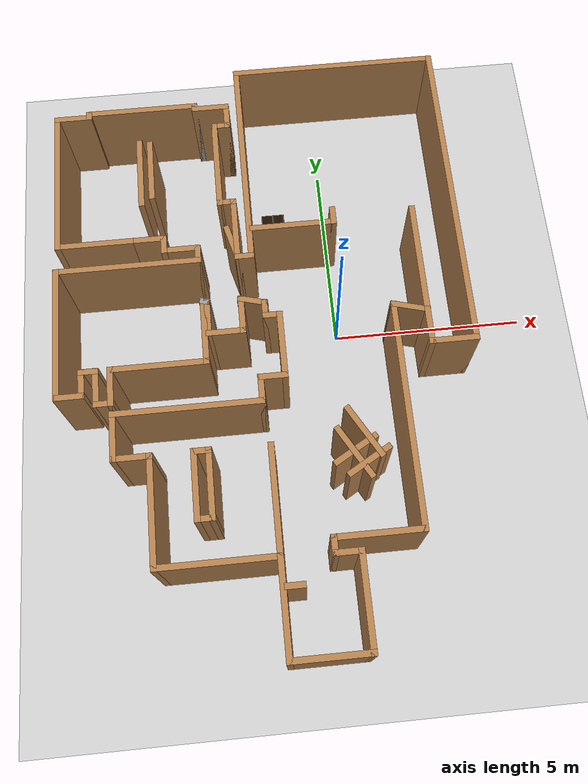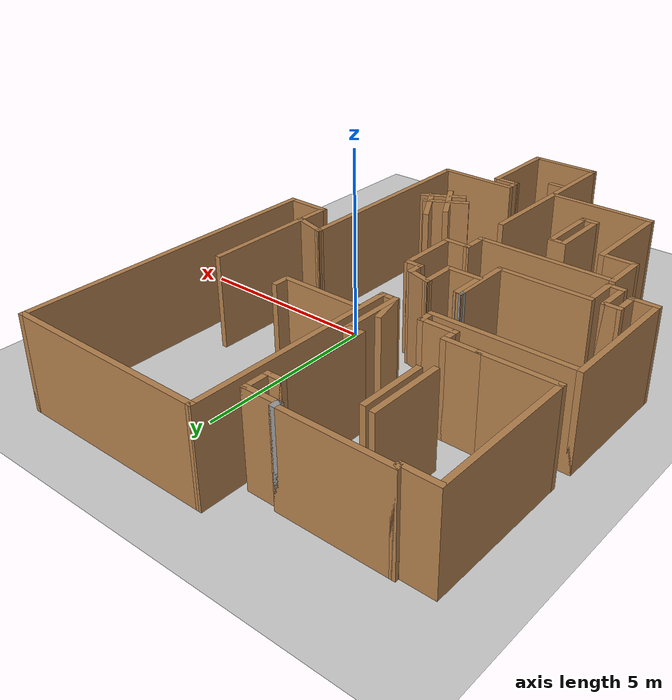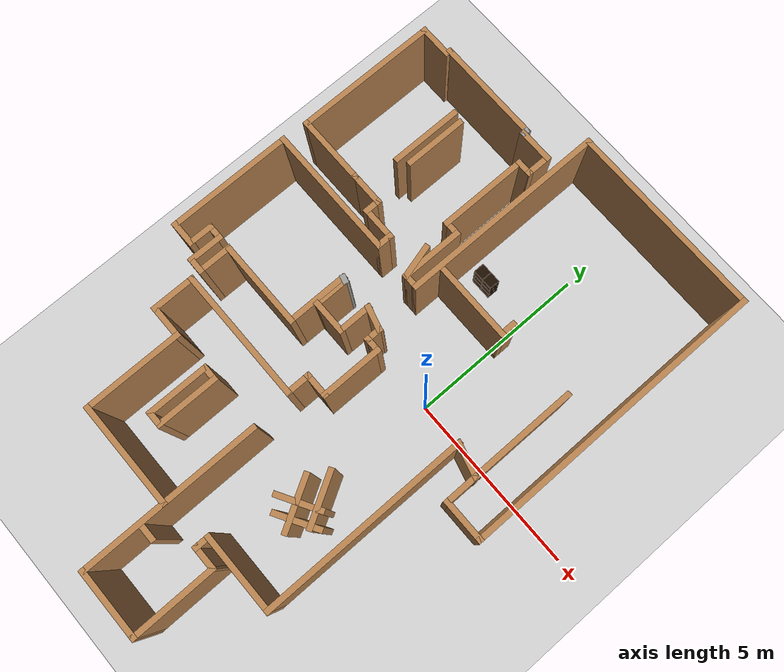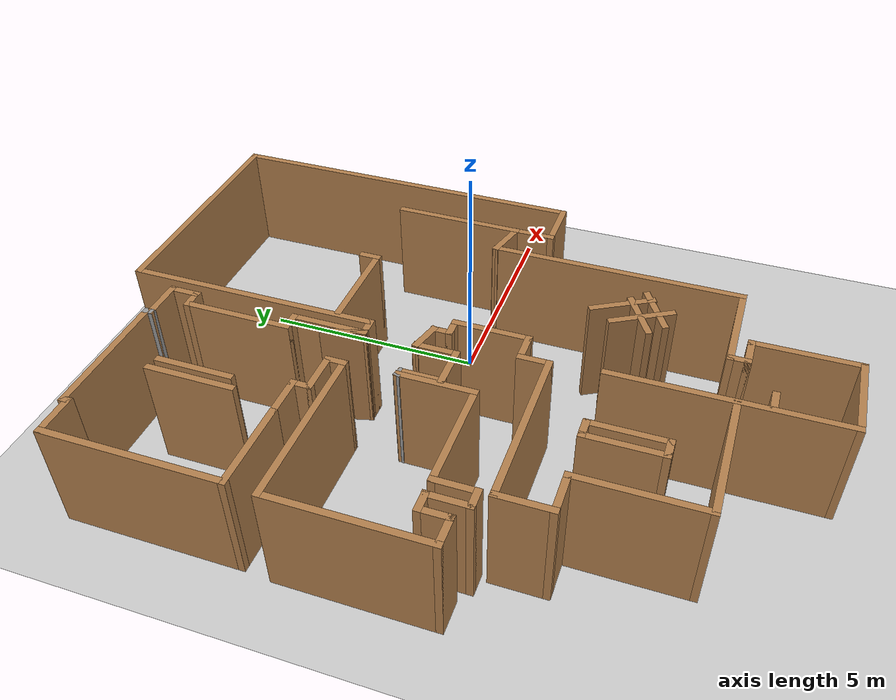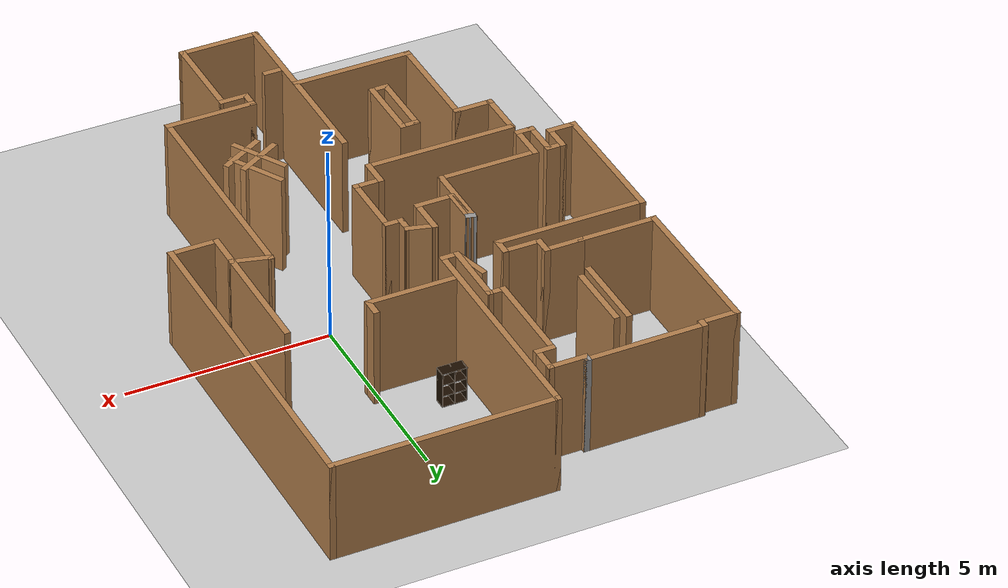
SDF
<sdf version="1.6">
 <world name="default">
  <model name="ground_plane">
   <static>1</static>
   <link name="link">
    <collision name="collision">
     <geometry><plane><normal>0 0 1</normal><size>100 100</size></plane></geometry>
     <surface><friction><ode><mu>100</mu><mu2>50</mu2></ode></friction></surface>
    </collision>
    <visual name="visual">
     <cast_shadows>0</cast_shadows>
     <geometry><plane><normal>0 0 1</normal><size>100 100</size></plane></geometry>
     <material>
      <script><uri>file://media/materials/scripts/gazebo.material</uri><name>Gazebo/Grey</name></script>
     </material>
    </visual>
   </link>
  </model>
  <model name="map_19">
   <pose>-1.87689 -0.616254 0 0 -0 0</pose>
   <link name="Wall_0">
    <collision name="Wall_0_Collision">
     <geometry><box><size>2 0.15 2.5</size></box></geometry>
     <pose>0 0 1.25 0 -0 0</pose>
    </collision>
    <visual name="Wall_0_Visual">
     <pose>0 0 1.25 0 -0 0</pose>
     <geometry><box><size>2 0.15 2.5</size></box></geometry>
     <material>
      <script><uri>file://media/materials/scripts/gazebo.material</uri><name>Gazebo/Wood</name></script>
      <ambient>1 1 1 1</ambient>
     </material>
     <meta><layer>0</layer></meta>
    </visual>
    <pose>0.811594 -7.72117 0 0 -0 3.14159</pose>
   </link>
   <link name="Wall_1">
    <collision name="Wall_1_Collision">
     <geometry><box><size>5 0.15 2.5</size></box></geometry>
     <pose>0 0 1.25 0 -0 0</pose>
    </collision>
    <visual name="Wall_1_Visual">
     <pose>0 0 1.25 0 -0 0</pose>
     <geometry><box><size>5 0.15 2.5</size></box></geometry>
     <material>
      <script><uri>file://media/materials/scripts/gazebo.material</uri><name>Gazebo/Wood</name></script>
      <ambient>1 1 1 1</ambient>
     </material>
     <meta><layer>0</layer></meta>
    </visual>
    <pose>-0.113406 -5.29617 0 0 -0 1.5708</pose>
   </link>
   <link name="Wall_10">
    <collision name="Wall_10_Collision">
     <geometry><box><size>0.75 0.15 2.5</size></box></geometry>
     <pose>0 0 1.25 0 -0 0</pose>
    </collision>
    <visual name="Wall_10_Visual">
     <pose>0 0 1.25 0 -0 0</pose>
     <geometry><box><size>0.75 0.15 2.5</size></box></geometry>
     <material>
      <script><uri>file://media/materials/scripts/gazebo.material</uri><name>Gazebo/Wood</name></script>
      <ambient>1 1 1 1</ambient>
     </material>
     <meta><layer>0</layer></meta>
    </visual>
    <pose>-0.223852 -1.45974 0 0 -0 1.5708</pose>
   </link>
   <link name="Wall_11">
    <collision name="Wall_11_Collision">
     <geometry><box><size>0.75 0.15 2.5</size></box></geometry>
     <pose>0 0 1.25 0 -0 0</pose>
    </collision>
    <visual name="Wall_11_Visual">
     <pose>0 0 1.25 0 -0 0</pose>
     <geometry><box><size>0.75 0.15 2.5</size></box></geometry>
     <material>
      <script><uri>file://media/materials/scripts/gazebo.material</uri><name>Gazebo/Wood</name></script>
      <ambient>1 1 1 1</ambient>
     </material>
     <meta><layer>0</layer></meta>
    </visual>
    <pose>0.076148 -1.15974 0 0 -0 0</pose>
   </link>
   <link name="Wall_12">
    <collision name="Wall_12_Collision">
     <geometry><box><size>1.75 0.15 2.5</size></box></geometry>
     <pose>0 0 1.25 0 -0 0</pose>
    </collision>
    <visual name="Wall_12_Visual">
     <pose>0 0 1.25 0 -0 0</pose>
     <geometry><box><size>1.75 0.15 2.5</size></box></geometry>
     <material>
      <script><uri>file://media/materials/scripts/gazebo.material</uri><name>Gazebo/Wood</name></script>
      <ambient>1 1 1 1</ambient>
     </material>
     <meta><layer>0</layer></meta>
    </visual>
    <pose>0.376148 -0.359742 0 0 -0 1.5708</pose>
   </link>
   <link name="Wall_13">
    <collision name="Wall_13_Collision">
     <geometry><box><size>0.5 0.15 2.5</size></box></geometry>
     <pose>0 0 1.25 0 -0 0</pose>
    </collision>
    <visual name="Wall_13_Visual">
     <pose>0 0 1.25 0 -0 0</pose>
     <geometry><box><size>0.5 0.15 2.5</size></box></geometry>
     <material>
      <script><uri>file://media/materials/scripts/gazebo.material</uri><name>Gazebo/Wood</name></script>
      <ambient>1 1 1 1</ambient>
     </material>
     <meta><layer>0</layer></meta>
    </visual>
    <pose>0.201148 0.440258 0 0 -0 3.14159</pose>
   </link>
   <link name="Wall_14">
    <collision name="Wall_14_Collision">
     <geometry><box><size>0.5 0.15 2.5</size></box></geometry>
     <pose>0 0 1.25 0 -0 0</pose>
    </collision>
    <visual name="Wall_14_Visual">
     <pose>0 0 1.25 0 -0 0</pose>
     <geometry><box><size>0.5 0.15 2.5</size></box></geometry>
     <material>
      <script><uri>file://media/materials/scripts/gazebo.material</uri><name>Gazebo/Wood</name></script>
      <ambient>1 1 1 1</ambient>
     </material>
     <meta><layer>0</layer></meta>
    </visual>
    <pose>0.026148 0.615258 0 0 -0 1.5708</pose>
   </link>
   <link name="Wall_15">
    <collision name="Wall_15_Collision">
     <geometry><box><size>0.75 0.15 2.5</size></box></geometry>
     <pose>0 0 1.25 0 -0 0</pose>
    </collision>
    <visual name="Wall_15_Visual">
     <pose>0 0 1.25 0 -0 0</pose>
     <geometry><box><size>0.75 0.15 2.5</size></box></geometry>
     <material>
      <script><uri>file://media/materials/scripts/gazebo.material</uri><name>Gazebo/Wood</name></script>
      <ambient>1 1 1 1</ambient>
     </material>
     <meta><layer>0</layer></meta>
    </visual>
    <pose>-0.26363 0.867903 0 0 -0 2.87979</pose>
   </link>
   <link name="Wall_16">
    <collision name="Wall_16_Collision">
     <geometry><box><size>1 0.15 2.5</size></box></geometry>
     <pose>0 0 1.25 0 -0 0</pose>
    </collision>
    <visual name="Wall_16_Visual">
     <pose>0 0 1.25 0 -0 0</pose>
     <geometry><box><size>1 0.15 2.5</size></box></geometry>
     <material>
      <script><uri>file://media/materials/scripts/gazebo.material</uri><name>Gazebo/Wood</name></script>
      <ambient>1 1 1 1</ambient>
     </material>
     <meta><layer>0</layer></meta>
    </visual>
    <pose>-0.553407 0.520549 0 0 -0 -1.5708</pose>
   </link>
   <link name="Wall_17">
    <collision name="Wall_17_Collision">
     <geometry><box><size>1 0.15 2.5</size></box></geometry>
     <pose>0 0 1.25 0 -0 0</pose>
    </collision>
    <visual name="Wall_17_Visual">
     <pose>0 0 1.25 0 -0 0</pose>
     <geometry><box><size>1 0.15 2.5</size></box></geometry>
     <material>
      <script><uri>file://media/materials/scripts/gazebo.material</uri><name>Gazebo/Wood</name></script>
      <ambient>1 1 1 1</ambient>
     </material>
     <meta><layer>0</layer></meta>
    </visual>
    <pose>-0.978407 0.095549 0 0 -0 3.14159</pose>
   </link>
   <link name="Wall_18">
    <collision name="Wall_18_Collision">
     <geometry><box><size>1 0.15 2.5</size></box></geometry>
     <pose>0 0 1.25 0 -0 0</pose>
    </collision>
    <visual name="Wall_18_Visual">
     <pose>0 0 1.25 0 -0 0</pose>
     <geometry><box><size>1 0.15 2.5</size></box></geometry>
     <material>
      <script><uri>file://media/materials/scripts/gazebo.material</uri><name>Gazebo/Wood</name></script>
      <ambient>1 1 1 1</ambient>
     </material>
     <meta><layer>0</layer></meta>
    </visual>
    <pose>-1.40341 0.520549 0 0 -0 1.5708</pose>
   </link>
   <link name="Wall_19">
    <collision name="Wall_19_Collision">
     <geometry><box><size>0.25 0.15 2.5</size></box></geometry>
     <pose>0 0 1.25 0 -0 0</pose>
    </collision>
    <visual name="Wall_19_Visual">
     <pose>0 0 1.25 0 -0 0</pose>
     <geometry><box><size>0.25 0.15 2.5</size></box></geometry>
     <material>
      <script><uri>file://media/materials/scripts/gazebo.material</uri><name>Gazebo/Grey</name></script>
      <ambient>1 1 1 1</ambient>
     </material>
     <meta><layer>0</layer></meta>
    </visual>
    <pose>-1.4517 0.95849 0 0 -0 2.87979</pose>
   </link>
   <link name="Wall_20">
    <collision name="Wall_20_Collision">
     <geometry><box><size>1.75 0.15 2.5</size></box></geometry>
     <pose>0 0 1.25 0 -0 0</pose>
    </collision>
    <visual name="Wall_20_Visual">
     <pose>0 0 1.25 0 -0 0</pose>
     <geometry><box><size>1.75 0.15 2.5</size></box></geometry>
     <material>
      <script><uri>file://media/materials/scripts/gazebo.material</uri><name>Gazebo/Wood</name></script>
      <ambient>1 1 1 1</ambient>
     </material>
     <meta><layer>0</layer></meta>
    </visual>
    <pose>-1.5 0.171431 0 0 -0 -1.5708</pose>
   </link>
   <link name="Wall_21">
    <collision name="Wall_21_Collision">
     <geometry><box><size>2.5 0.15 2.5</size></box></geometry>
     <pose>0 0 1.25 0 -0 0</pose>
    </collision>
    <visual name="Wall_21_Visual">
     <pose>0 0 1.25 0 -0 0</pose>
     <geometry><box><size>2.5 0.15 2.5</size></box></geometry>
     <material>
      <script><uri>file://media/materials/scripts/gazebo.material</uri><name>Gazebo/Wood</name></script>
      <ambient>1 1 1 1</ambient>
     </material>
     <meta><layer>0</layer></meta>
    </visual>
    <pose>-2.675 -0.628569 0 0 -0 3.14159</pose>
   </link>
   <link name="Wall_22">
    <collision name="Wall_22_Collision">
     <geometry><box><size>1 0.15 2.5</size></box></geometry>
     <pose>0 0 1.25 0 -0 0</pose>
    </collision>
    <visual name="Wall_22_Visual">
     <pose>0 0 1.25 0 -0 0</pose>
     <geometry><box><size>1 0.15 2.5</size></box></geometry>
     <material>
      <script><uri>file://media/materials/scripts/gazebo.material</uri><name>Gazebo/Wood</name></script>
      <ambient>1 1 1 1</ambient>
     </material>
     <meta><layer>0</layer></meta>
    </visual>
    <pose>-3.85 -1.05357 0 0 -0 -1.5708</pose>
   </link>
   <link name="Wall_23">
    <collision name="Wall_23_Collision">
     <geometry><box><size>0.5 0.15 2.5</size></box></geometry>
     <pose>0 0 1.25 0 -0 0</pose>
    </collision>
    <visual name="Wall_23_Visual">
     <pose>0 0 1.25 0 -0 0</pose>
     <geometry><box><size>0.5 0.15 2.5</size></box></geometry>
     <material>
      <script><uri>file://media/materials/scripts/gazebo.material</uri><name>Gazebo/Wood</name></script>
      <ambient>1 1 1 1</ambient>
     </material>
     <meta><layer>0</layer></meta>
    </visual>
    <pose>-4.025 -1.47857 0 0 -0 3.14159</pose>
   </link>
   <link name="Wall_24">
    <collision name="Wall_24_Collision">
     <geometry><box><size>1 0.15 2.5</size></box></geometry>
     <pose>0 0 1.25 0 -0 0</pose>
    </collision>
    <visual name="Wall_24_Visual">
     <pose>0 0 1.25 0 -0 0</pose>
     <geometry><box><size>1 0.15 2.5</size></box></geometry>
     <material>
      <script><uri>file://media/materials/scripts/gazebo.material</uri><name>Gazebo/Wood</name></script>
      <ambient>1 1 1 1</ambient>
     </material>
     <meta><layer>0</layer></meta>
    </visual>
    <pose>-4.2 -1.05357 0 0 -0 1.5708</pose>
   </link>
   <link name="Wall_25">
    <collision name="Wall_25_Collision">
     <geometry><box><size>0.5 0.15 2.5</size></box></geometry>
     <pose>0 0 1.25 0 -0 0</pose>
    </collision>
    <visual name="Wall_25_Visual">
     <pose>0 0 1.25 0 -0 0</pose>
     <geometry><box><size>0.5 0.15 2.5</size></box></geometry>
     <material>
      <script><uri>file://media/materials/scripts/gazebo.material</uri><name>Gazebo/Wood</name></script>
      <ambient>1 1 1 1</ambient>
     </material>
     <meta><layer>0</layer></meta>
    </visual>
    <pose>-4.375 -0.628569 0 0 -0 3.14159</pose>
   </link>
   <link name="Wall_26">
    <collision name="Wall_26_Collision">
     <geometry><box><size>0.75 0.15 2.5</size></box></geometry>
     <pose>0 0 1.25 0 -0 0</pose>
    </collision>
    <visual name="Wall_26_Visual">
     <pose>0 0 1.25 0 -0 0</pose>
     <geometry><box><size>0.75 0.15 2.5</size></box></geometry>
     <material>
      <script><uri>file://media/materials/scripts/gazebo.material</uri><name>Gazebo/Wood</name></script>
      <ambient>1 1 1 1</ambient>
     </material>
     <meta><layer>0</layer></meta>
    </visual>
    <pose>-4.55 -0.928569 0 0 -0 -1.5708</pose>
   </link>
   <link name="Wall_27">
    <collision name="Wall_27_Collision">
     <geometry><box><size>0.75 0.15 2.5</size></box></geometry>
     <pose>0 0 1.25 0 -0 0</pose>
    </collision>
    <visual name="Wall_27_Visual">
     <pose>0 0 1.25 0 -0 0</pose>
     <geometry><box><size>0.75 0.15 2.5</size></box></geometry>
     <material>
      <script><uri>file://media/materials/scripts/gazebo.material</uri><name>Gazebo/Wood</name></script>
      <ambient>1 1 1 1</ambient>
     </material>
     <meta><layer>0</layer></meta>
    </visual>
    <pose>-4.85 -1.22857 0 0 -0 3.14159</pose>
   </link>
   <link name="Wall_28">
    <collision name="Wall_28_Collision">
     <geometry><box><size>3.5 0.15 2.5</size></box></geometry>
     <pose>0 0 1.25 0 -0 0</pose>
    </collision>
    <visual name="Wall_28_Visual">
     <pose>0 0 1.25 0 -0 0</pose>
     <geometry><box><size>3.5 0.15 2.5</size></box></geometry>
     <material>
      <script><uri>file://media/materials/scripts/gazebo.material</uri><name>Gazebo/Wood</name></script>
      <ambient>1 1 1 1</ambient>
     </material>
     <meta><layer>0</layer></meta>
    </visual>
    <pose>-5.15 0.446431 0 0 -0 1.5708</pose>
   </link>
   <link name="Wall_29">
    <collision name="Wall_29_Collision">
     <geometry><box><size>3.75 0.15 2.5</size></box></geometry>
     <pose>0 0 1.25 0 -0 0</pose>
    </collision>
    <visual name="Wall_29_Visual">
     <pose>0 0 1.25 0 -0 0</pose>
     <geometry><box><size>3.75 0.15 2.5</size></box></geometry>
     <material>
      <script><uri>file://media/materials/scripts/gazebo.material</uri><name>Gazebo/Wood</name></script>
      <ambient>1 1 1 1</ambient>
     </material>
     <meta><layer>0</layer></meta>
    </visual>
    <pose>-3.35 2.12143 0 0 -0 0</pose>
   </link>
   <link name="Wall_3">
    <collision name="Wall_3_Collision">
     <geometry><box><size>0.5 0.15 2.5</size></box></geometry>
     <pose>0 0 1.25 0 -0 0</pose>
    </collision>
    <visual name="Wall_3_Visual">
     <pose>0 0 1.25 0 -0 0</pose>
     <geometry><box><size>0.5 0.15 2.5</size></box></geometry>
     <material>
      <script><uri>file://media/materials/scripts/gazebo.material</uri><name>Gazebo/Wood</name></script>
      <ambient>1 1 1 1</ambient>
     </material>
     <meta><layer>0</layer></meta>
    </visual>
    <pose>0.160001 -6.13273 0 0 -0 3.14159</pose>
   </link>
   <link name="Wall_31">
    <collision name="Wall_31_Collision">
     <geometry><box><size>0.5 0.15 2.5</size></box></geometry>
     <pose>0 0 1.25 0 -0 0</pose>
    </collision>
    <visual name="Wall_31_Visual">
     <pose>0 0 1.25 0 -0 0</pose>
     <geometry><box><size>0.5 0.15 2.5</size></box></geometry>
     <material>
      <script><uri>file://media/materials/scripts/gazebo.material</uri><name>Gazebo/Wood</name></script>
      <ambient>1 1 1 1</ambient>
     </material>
     <meta><layer>0</layer></meta>
    </visual>
    <pose>-1.55 2.29643 0 0 -0 1.5708</pose>
   </link>
   <link name="Wall_32">
    <collision name="Wall_32_Collision">
     <geometry><box><size>1 0.15 2.5</size></box></geometry>
     <pose>0 0 1.25 0 -0 0</pose>
    </collision>
    <visual name="Wall_32_Visual">
     <pose>0 0 1.25 0 -0 0</pose>
     <geometry><box><size>1 0.15 2.5</size></box></geometry>
     <material>
      <script><uri>file://media/materials/scripts/gazebo.material</uri><name>Gazebo/Wood</name></script>
      <ambient>1 1 1 1</ambient>
     </material>
     <meta><layer>0</layer></meta>
    </visual>
    <pose>-1.975 2.47143 0 0 -0 3.14159</pose>
   </link>
   <link name="Wall_33">
    <collision name="Wall_33_Collision">
     <geometry><box><size>0.5 0.15 2.5</size></box></geometry>
     <pose>0 0 1.25 0 -0 0</pose>
    </collision>
    <visual name="Wall_33_Visual">
     <pose>0 0 1.25 0 -0 0</pose>
     <geometry><box><size>0.5 0.15 2.5</size></box></geometry>
     <material>
      <script><uri>file://media/materials/scripts/gazebo.material</uri><name>Gazebo/Wood</name></script>
      <ambient>1 1 1 1</ambient>
     </material>
     <meta><layer>0</layer></meta>
    </visual>
    <pose>-2.4 2.64643 0 0 -0 1.5708</pose>
   </link>
   <link name="Wall_34">
    <collision name="Wall_34_Collision">
     <geometry><box><size>1 0.15 2.5</size></box></geometry>
     <pose>0 0 1.25 0 -0 0</pose>
    </collision>
    <visual name="Wall_34_Visual">
     <pose>0 0 1.25 0 -0 0</pose>
     <geometry><box><size>1 0.15 2.5</size></box></geometry>
     <material>
      <script><uri>file://media/materials/scripts/gazebo.material</uri><name>Gazebo/Wood</name></script>
      <ambient>1 1 1 1</ambient>
     </material>
     <meta><layer>0</layer></meta>
    </visual>
    <pose>-2.825 2.82143 0 0 -0 3.14159</pose>
   </link>
   <link name="Wall_35">
    <collision name="Wall_35_Collision">
     <geometry><box><size>2 0.15 2.5</size></box></geometry>
     <pose>0 0 1.25 0 -0 0</pose>
    </collision>
    <visual name="Wall_35_Visual">
     <pose>0 0 1.25 0 -0 0</pose>
     <geometry><box><size>2 0.15 2.5</size></box></geometry>
     <material>
      <script><uri>file://media/materials/scripts/gazebo.material</uri><name>Gazebo/Wood</name></script>
      <ambient>1 1 1 1</ambient>
     </material>
     <meta><layer>0</layer></meta>
    </visual>
    <pose>-4.175 2.82143 0 0 -0 3.14159</pose>
   </link>
   <link name="Wall_36">
    <collision name="Wall_36_Collision">
     <geometry><box><size>4 0.15 2.5</size></box></geometry>
     <pose>0 0 1.25 0 -0 0</pose>
    </collision>
    <visual name="Wall_36_Visual">
     <pose>0 0 1.25 0 -0 0</pose>
     <geometry><box><size>4 0.15 2.5</size></box></geometry>
     <material>
      <script><uri>file://media/materials/scripts/gazebo.material</uri><name>Gazebo/Wood</name></script>
      <ambient>1 1 1 1</ambient>
     </material>
     <meta><layer>0</layer></meta>
    </visual>
    <pose>-5.1 4.74643 0 0 -0 1.5708</pose>
   </link>
   <link name="Wall_37">
    <collision name="Wall_37_Collision">
     <geometry><box><size>1 0.15 2.5</size></box></geometry>
     <pose>0 0 1.25 0 -0 0</pose>
    </collision>
    <visual name="Wall_37_Visual">
     <pose>0 0 1.25 0 -0 0</pose>
     <geometry><box><size>1 0.15 2.5</size></box></geometry>
     <material>
      <script><uri>file://media/materials/scripts/gazebo.material</uri><name>Gazebo/Wood</name></script>
      <ambient>1 1 1 1</ambient>
     </material>
     <meta><layer>0</layer></meta>
    </visual>
    <pose>-4.675 6.67143 0 0 -0 0</pose>
   </link>
   <link name="Wall_39">
    <collision name="Wall_39_Collision">
     <geometry><box><size>0.25 0.15 2.5</size></box></geometry>
     <pose>0 0 1.25 0 -0 0</pose>
    </collision>
    <visual name="Wall_39_Visual">
     <pose>0 0 1.25 0 -0 0</pose>
     <geometry><box><size>0.25 0.15 2.5</size></box></geometry>
     <material>
      <script><uri>file://media/materials/scripts/gazebo.material</uri><name>Gazebo/Wood</name></script>
      <ambient>1 1 1 1</ambient>
     </material>
     <meta><layer>0</layer></meta>
    </visual>
    <pose>-4.25 6.72143 0 0 -0 1.5708</pose>
   </link>
   <link name="Wall_40">
    <collision name="Wall_40_Collision">
     <geometry><box><size>3 0.15 2.5</size></box></geometry>
     <pose>0 0 1.25 0 -0 0</pose>
    </collision>
    <visual name="Wall_40_Visual">
     <pose>0 0 1.25 0 -0 0</pose>
     <geometry><box><size>3 0.15 2.5</size></box></geometry>
     <material>
      <script><uri>file://media/materials/scripts/gazebo.material</uri><name>Gazebo/Wood</name></script>
      <ambient>1 1 1 1</ambient>
     </material>
     <meta><layer>0</layer></meta>
    </visual>
    <pose>-2.825 6.77143 0 0 -0 0</pose>
   </link>
   <link name="Wall_41">
    <collision name="Wall_41_Collision">
     <geometry><box><size>0.25 0.15 2.5</size></box></geometry>
     <pose>0 0 1.25 0 -0 0</pose>
    </collision>
    <visual name="Wall_41_Visual">
     <pose>0 0 1.25 0 -0 0</pose>
     <geometry><box><size>0.25 0.15 2.5</size></box></geometry>
     <material>
      <script><uri>file://media/materials/scripts/gazebo.material</uri><name>Gazebo/Grey</name></script>
      <ambient>1 1 1 1</ambient>
     </material>
     <meta><layer>0</layer></meta>
    </visual>
    <pose>-1.4 6.72143 0 0 -0 -1.5708</pose>
   </link>
   <link name="Wall_42">
    <collision name="Wall_42_Collision">
     <geometry><box><size>1 0.15 2.5</size></box></geometry>
     <pose>0 0 1.25 0 -0 0</pose>
    </collision>
    <visual name="Wall_42_Visual">
     <pose>0 0 1.25 0 -0 0</pose>
     <geometry><box><size>1 0.15 2.5</size></box></geometry>
     <material>
      <script><uri>file://media/materials/scripts/gazebo.material</uri><name>Gazebo/Wood</name></script>
      <ambient>1 1 1 1</ambient>
     </material>
     <meta><layer>0</layer></meta>
    </visual>
    <pose>-0.975 6.67143 0 0 -0 0</pose>
   </link>
   <link name="Wall_43">
    <collision name="Wall_43_Collision">
     <geometry><box><size>0.75 0.15 2.5</size></box></geometry>
     <pose>0 0 1.25 0 -0 0</pose>
    </collision>
    <visual name="Wall_43_Visual">
     <pose>0 0 1.25 0 -0 0</pose>
     <geometry><box><size>0.75 0.15 2.5</size></box></geometry>
     <material>
      <script><uri>file://media/materials/scripts/gazebo.material</uri><name>Gazebo/Wood</name></script>
      <ambient>1 1 1 1</ambient>
     </material>
     <meta><layer>0</layer></meta>
    </visual>
    <pose>-0.55 6.37143 0 0 -0 -1.5708</pose>
   </link>
   <link name="Wall_44">
    <collision name="Wall_44_Collision">
     <geometry><box><size>0.5 0.15 2.5</size></box></geometry>
     <pose>0 0 1.25 0 -0 0</pose>
    </collision>
    <visual name="Wall_44_Visual">
     <pose>0 0 1.25 0 -0 0</pose>
     <geometry><box><size>0.5 0.15 2.5</size></box></geometry>
     <material>
      <script><uri>file://media/materials/scripts/gazebo.material</uri><name>Gazebo/Wood</name></script>
      <ambient>1 1 1 1</ambient>
     </material>
     <meta><layer>0</layer></meta>
    </visual>
    <pose>-0.725 6.07143 0 0 -0 3.14159</pose>
   </link>
   <link name="Wall_45">
    <collision name="Wall_45_Collision">
     <geometry><box><size>2.5 0.15 2.5</size></box></geometry>
     <pose>0 0 1.25 0 -0 0</pose>
    </collision>
    <visual name="Wall_45_Visual">
     <pose>0 0 1.25 0 -0 0</pose>
     <geometry><box><size>2.5 0.15 2.5</size></box></geometry>
     <material>
      <script><uri>file://media/materials/scripts/gazebo.material</uri><name>Gazebo/Wood</name></script>
      <ambient>1 1 1 1</ambient>
     </material>
     <meta><layer>0</layer></meta>
    </visual>
    <pose>-0.9 4.89643 0 0 -0 -1.5708</pose>
   </link>
   <link name="Wall_46">
    <collision name="Wall_46_Collision">
     <geometry><box><size>0.5 0.15 2.5</size></box></geometry>
     <pose>0 0 1.25 0 -0 0</pose>
    </collision>
    <visual name="Wall_46_Visual">
     <pose>0 0 1.25 0 -0 0</pose>
     <geometry><box><size>0.5 0.15 2.5</size></box></geometry>
     <material>
      <script><uri>file://media/materials/scripts/gazebo.material</uri><name>Gazebo/Wood</name></script>
      <ambient>1 1 1 1</ambient>
     </material>
     <meta><layer>0</layer></meta>
    </visual>
    <pose>-0.725 3.72143 0 0 -0 0</pose>
   </link>
   <link name="Wall_47">
    <collision name="Wall_47_Collision">
     <geometry><box><size>1.75 0.15 2.5</size></box></geometry>
     <pose>0 0 1.25 0 -0 0</pose>
    </collision>
    <visual name="Wall_47_Visual">
     <pose>0 0 1.25 0 -0 0</pose>
     <geometry><box><size>1.75 0.15 2.5</size></box></geometry>
     <material>
      <script><uri>file://media/materials/scripts/gazebo.material</uri><name>Gazebo/Wood</name></script>
      <ambient>1 1 1 1</ambient>
     </material>
     <meta><layer>0</layer></meta>
    </visual>
    <pose>-0.55 2.92143 0 0 -0 -1.5708</pose>
   </link>
   <link name="Wall_48">
    <collision name="Wall_48_Collision">
     <geometry><box><size>1 0.15 2.5</size></box></geometry>
     <pose>0 0 1.25 0 -0 0</pose>
    </collision>
    <visual name="Wall_48_Visual">
     <pose>0 0 1.25 0 -0 0</pose>
     <geometry><box><size>1 0.15 2.5</size></box></geometry>
     <material>
      <script><uri>file://media/materials/scripts/gazebo.material</uri><name>Gazebo/Wood</name></script>
      <ambient>1 1 1 1</ambient>
     </material>
     <meta><layer>0</layer></meta>
    </visual>
    <pose>-0.659998 2.53195 0 0 -0 1.8326</pose>
   </link>
   <link name="Wall_5">
    <collision name="Wall_5_Collision">
     <geometry><box><size>3 0.15 2.5</size></box></geometry>
     <pose>0 0 1.25 0 -0 0</pose>
    </collision>
    <visual name="Wall_5_Visual">
     <pose>0 0 1.25 0 -0 0</pose>
     <geometry><box><size>3 0.15 2.5</size></box></geometry>
     <material>
      <script><uri>file://media/materials/scripts/gazebo.material</uri><name>Gazebo/Wood</name></script>
      <ambient>1 1 1 1</ambient>
     </material>
     <meta><layer>0</layer></meta>
    </visual>
    <pose>-1.54885 -5.45974 0 0 -0 3.14159</pose>
   </link>
   <link name="Wall_50">
    <collision name="Wall_50_Collision">
     <geometry><box><size>0.5 0.15 2.5</size></box></geometry>
     <pose>0 0 1.25 0 -0 0</pose>
    </collision>
    <visual name="Wall_50_Visual">
     <pose>0 0 1.25 0 -0 0</pose>
     <geometry><box><size>0.5 0.15 2.5</size></box></geometry>
     <material>
      <script><uri>file://media/materials/scripts/gazebo.material</uri><name>Gazebo/Wood</name></script>
      <ambient>1 1 1 1</ambient>
     </material>
     <meta><layer>0</layer></meta>
    </visual>
    <pose>-0.375 2.12143 0 0 -0 0</pose>
   </link>
   <link name="Wall_53">
    <collision name="Wall_53_Collision">
     <geometry><box><size>5.75 0.15 2.5</size></box></geometry>
     <pose>0 0 1.25 0 -0 0</pose>
    </collision>
    <visual name="Wall_53_Visual">
     <pose>0 0 1.25 0 -0 0</pose>
     <geometry><box><size>5.75 0.15 2.5</size></box></geometry>
     <material>
      <script><uri>file://media/materials/scripts/gazebo.material</uri><name>Gazebo/Wood</name></script>
      <ambient>1 1 1 1</ambient>
     </material>
     <meta><layer>0</layer></meta>
    </visual>
    <pose>-0.2 4.92143 0 0 -0 1.5708</pose>
   </link>
   <link name="Wall_54">
    <collision name="Wall_54_Collision">
     <geometry><box><size>5.5 0.15 2.5</size></box></geometry>
     <pose>0 0 1.25 0 -0 0</pose>
    </collision>
    <visual name="Wall_54_Visual">
     <pose>0 0 1.25 0 -0 0</pose>
     <geometry><box><size>5.5 0.15 2.5</size></box></geometry>
     <material>
      <script><uri>file://media/materials/scripts/gazebo.material</uri><name>Gazebo/Wood</name></script>
      <ambient>1 1 1 1</ambient>
     </material>
     <meta><layer>0</layer></meta>
    </visual>
    <pose>2.475 7.72143 0 0 -0 0</pose>
   </link>
   <link name="Wall_56">
    <collision name="Wall_56_Collision">
     <geometry><box><size>8.5 0.15 2.5</size></box></geometry>
     <pose>0 0 1.25 0 -0 0</pose>
    </collision>
    <visual name="Wall_56_Visual">
     <pose>0 0 1.25 0 -0 0</pose>
     <geometry><box><size>8.5 0.15 2.5</size></box></geometry>
     <material>
      <script><uri>file://media/materials/scripts/gazebo.material</uri><name>Gazebo/Wood</name></script>
      <ambient>1 1 1 1</ambient>
     </material>
     <meta><layer>0</layer></meta>
    </visual>
    <pose>5.15 3.54643 0 0 -0 -1.5708</pose>
   </link>
   <link name="Wall_57">
    <collision name="Wall_57_Collision">
     <geometry><box><size>1.25 0.15 2.5</size></box></geometry>
     <pose>0 0 1.25 0 -0 0</pose>
    </collision>
    <visual name="Wall_57_Visual">
     <pose>0 0 1.25 0 -0 0</pose>
     <geometry><box><size>1.25 0.15 2.5</size></box></geometry>
     <material>
      <script><uri>file://media/materials/scripts/gazebo.material</uri><name>Gazebo/Wood</name></script>
      <ambient>1 1 1 1</ambient>
     </material>
     <meta><layer>0</layer></meta>
    </visual>
    <pose>4.6 -0.628569 0 0 -0 3.14159</pose>
   </link>
   <link name="Wall_58">
    <collision name="Wall_58_Collision">
     <geometry><box><size>1 0.15 2.5</size></box></geometry>
     <pose>0 0 1.25 0 -0 0</pose>
    </collision>
    <visual name="Wall_58_Visual">
     <pose>0 0 1.25 0 -0 0</pose>
     <geometry><box><size>1 0.15 2.5</size></box></geometry>
     <material>
      <script><uri>file://media/materials/scripts/gazebo.material</uri><name>Gazebo/Wood</name></script>
      <ambient>1 1 1 1</ambient>
     </material>
     <meta><layer>0</layer></meta>
    </visual>
    <pose>4.05 -0.203569 0 0 -0 1.5708</pose>
   </link>
   <link name="Wall_59">
    <collision name="Wall_59_Collision">
     <geometry><box><size>1 0.15 2.5</size></box></geometry>
     <pose>0 0 1.25 0 -0 0</pose>
    </collision>
    <visual name="Wall_59_Visual">
     <pose>0 0 1.25 0 -0 0</pose>
     <geometry><box><size>1 0.15 2.5</size></box></geometry>
     <material>
      <script><uri>file://media/materials/scripts/gazebo.material</uri><name>Gazebo/Wood</name></script>
      <ambient>1 1 1 1</ambient>
     </material>
     <meta><layer>0</layer></meta>
    </visual>
    <pose>3.63948 0.331429 0 0 -0 2.87979</pose>
   </link>
   <link name="Wall_6">
    <collision name="Wall_6_Collision">
     <geometry><box><size>2.75 0.15 2.5</size></box></geometry>
     <pose>0 0 1.25 0 -0 0</pose>
    </collision>
    <visual name="Wall_6_Visual">
     <pose>0 0 1.25 0 -0 0</pose>
     <geometry><box><size>2.75 0.15 2.5</size></box></geometry>
     <material>
      <script><uri>file://media/materials/scripts/gazebo.material</uri><name>Gazebo/Wood</name></script>
      <ambient>1 1 1 1</ambient>
     </material>
     <meta><layer>0</layer></meta>
    </visual>
    <pose>-2.97385 -4.15974 0 0 -0 1.5708</pose>
   </link>
   <link name="Wall_60">
    <collision name="Wall_60_Collision">
     <geometry><box><size>5.75 0.15 2.5</size></box></geometry>
     <pose>0 0 1.25 0 -0 0</pose>
    </collision>
    <visual name="Wall_60_Visual">
     <pose>0 0 1.25 0 -0 0</pose>
     <geometry><box><size>5.75 0.15 2.5</size></box></geometry>
     <material>
      <script><uri>file://media/materials/scripts/gazebo.material</uri><name>Gazebo/Wood</name></script>
      <ambient>1 1 1 1</ambient>
     </material>
     <meta><layer>0</layer></meta>
    </visual>
    <pose>3.22896 -2.35857 0 0 -0 -1.5708</pose>
   </link>
   <link name="Wall_62">
    <collision name="Wall_62_Collision">
     <geometry><box><size>2.25 0.15 2.5</size></box></geometry>
     <pose>0 0 1.25 0 -0 0</pose>
    </collision>
    <visual name="Wall_62_Visual">
     <pose>0 0 1.25 0 -0 0</pose>
     <geometry><box><size>2.25 0.15 2.5</size></box></geometry>
     <material>
      <script><uri>file://media/materials/scripts/gazebo.material</uri><name>Gazebo/Wood</name></script>
      <ambient>1 1 1 1</ambient>
     </material>
     <meta><layer>0</layer></meta>
    </visual>
    <pose>2.17896 -5.15857 0 0 -0 3.14159</pose>
   </link>
   <link name="Wall_63">
    <collision name="Wall_63_Collision">
     <geometry><box><size>0.5 0.15 2.5</size></box></geometry>
     <pose>0 0 1.25 0 -0 0</pose>
    </collision>
    <visual name="Wall_63_Visual">
     <pose>0 0 1.25 0 -0 0</pose>
     <geometry><box><size>0.5 0.15 2.5</size></box></geometry>
     <material>
      <script><uri>file://media/materials/scripts/gazebo.material</uri><name>Gazebo/Wood</name></script>
      <ambient>1 1 1 1</ambient>
     </material>
     <meta><layer>0</layer></meta>
    </visual>
    <pose>1.12896 -5.33357 0 0 -0 -1.5708</pose>
   </link>
   <link name="Wall_64">
    <collision name="Wall_64_Collision">
     <geometry><box><size>0.75 0.15 2.5</size></box></geometry>
     <pose>0 0 1.25 0 -0 0</pose>
    </collision>
    <visual name="Wall_64_Visual">
     <pose>0 0 1.25 0 -0 0</pose>
     <geometry><box><size>0.75 0.15 2.5</size></box></geometry>
     <material>
      <script><uri>file://media/materials/scripts/gazebo.material</uri><name>Gazebo/Wood</name></script>
      <ambient>1 1 1 1</ambient>
     </material>
     <meta><layer>0</layer></meta>
    </visual>
    <pose>1.42896 -5.50857 0 0 -0 0</pose>
   </link>
   <link name="Wall_65">
    <collision name="Wall_65_Collision">
     <geometry><box><size>2.36261 0.15 2.5</size></box></geometry>
     <pose>0 0 1.25 0 -0 0</pose>
    </collision>
    <visual name="Wall_65_Visual">
     <pose>0 0 1.25 0 -0 0</pose>
     <geometry><box><size>2.36261 0.15 2.5</size></box></geometry>
     <material>
      <script><uri>file://media/materials/scripts/gazebo.material</uri><name>Gazebo/Wood</name></script>
      <ambient>1 1 1 1</ambient>
     </material>
     <meta><layer>0</layer></meta>
    </visual>
    <pose>1.73278 -6.61487 0 0 -0 -1.56735</pose>
   </link>
   <link name="Wall_67">
    <collision name="Wall_67_Collision">
     <geometry><box><size>0.5 0.15 2.5</size></box></geometry>
     <pose>0 0 1.25 0 -0 0</pose>
    </collision>
    <visual name="Wall_67_Visual">
     <pose>0 0 1.25 0 -0 0</pose>
     <geometry><box><size>0.5 0.15 2.5</size></box></geometry>
     <material>
      <script><uri>file://media/materials/scripts/gazebo.material</uri><name>Gazebo/Wood</name></script>
      <ambient>1 1 1 1</ambient>
     </material>
     <meta><layer>0</layer></meta>
    </visual>
    <pose>-1.76031 -2.84872 0 0 -0 0</pose>
   </link>
   <link name="Wall_68">
    <collision name="Wall_68_Collision">
     <geometry><box><size>1.75 0.15 2.5</size></box></geometry>
     <pose>0 0 1.25 0 -0 0</pose>
    </collision>
    <visual name="Wall_68_Visual">
     <pose>0 0 1.25 0 -0 0</pose>
     <geometry><box><size>1.75 0.15 2.5</size></box></geometry>
     <material>
      <script><uri>file://media/materials/scripts/gazebo.material</uri><name>Gazebo/Wood</name></script>
      <ambient>1 1 1 1</ambient>
     </material>
     <meta><layer>0</layer></meta>
    </visual>
    <pose>-1.58531 -3.64873 0 0 -0 -1.5708</pose>
   </link>
   <link name="Wall_69">
    <collision name="Wall_69_Collision">
     <geometry><box><size>0.5 0.15 2.5</size></box></geometry>
     <pose>0 0 1.25 0 -0 0</pose>
    </collision>
    <visual name="Wall_69_Visual">
     <pose>0 0 1.25 0 -0 0</pose>
     <geometry><box><size>0.5 0.15 2.5</size></box></geometry>
     <material>
      <script><uri>file://media/materials/scripts/gazebo.material</uri><name>Gazebo/Wood</name></script>
      <ambient>1 1 1 1</ambient>
     </material>
     <meta><layer>0</layer></meta>
    </visual>
    <pose>-1.76031 -4.44872 0 0 -0 3.14159</pose>
   </link>
   <link name="Wall_7">
    <collision name="Wall_7_Collision">
     <geometry><box><size>1 0.15 2.5</size></box></geometry>
     <pose>0 0 1.25 0 -0 0</pose>
    </collision>
    <visual name="Wall_7_Visual">
     <pose>0 0 1.25 0 -0 0</pose>
     <geometry><box><size>1 0.15 2.5</size></box></geometry>
     <material>
      <script><uri>file://media/materials/scripts/gazebo.material</uri><name>Gazebo/Wood</name></script>
      <ambient>1 1 1 1</ambient>
     </material>
     <meta><layer>0</layer></meta>
    </visual>
    <pose>-3.39885 -2.85974 0 0 -0 3.14159</pose>
   </link>
   <link name="Wall_70">
    <collision name="Wall_70_Collision">
     <geometry><box><size>1.75 0.15 2.5</size></box></geometry>
     <pose>0 0 1.25 0 -0 0</pose>
    </collision>
    <visual name="Wall_70_Visual">
     <pose>0 0 1.25 0 -0 0</pose>
     <geometry><box><size>1.75 0.15 2.5</size></box></geometry>
     <material>
      <script><uri>file://media/materials/scripts/gazebo.material</uri><name>Gazebo/Wood</name></script>
      <ambient>1 1 1 1</ambient>
     </material>
     <meta><layer>0</layer></meta>
    </visual>
    <pose>-1.93531 -3.64873 0 0 -0 1.5708</pose>
   </link>
   <link name="Wall_72">
    <collision name="Wall_72_Collision">
     <geometry><box><size>1.5 0.15 2.5</size></box></geometry>
     <pose>0 0 1.25 0 -0 0</pose>
    </collision>
    <visual name="Wall_72_Visual">
     <pose>0 0 1.25 0 -0 0</pose>
     <geometry><box><size>1.5 0.15 2.5</size></box></geometry>
     <material>
      <script><uri>file://media/materials/scripts/gazebo.material</uri><name>Gazebo/Wood</name></script>
      <ambient>1 1 1 1</ambient>
     </material>
     <meta><layer>0</layer></meta>
    </visual>
    <pose>1.83361 -3.22049 0 0 -0 -1.0472</pose>
   </link>
   <link name="Wall_74">
    <collision name="Wall_74_Collision">
     <geometry><box><size>1.5 0.15 2.5</size></box></geometry>
     <pose>0 0 1.25 0 -0 0</pose>
    </collision>
    <visual name="Wall_74_Visual">
     <pose>0 0 1.25 0 -0 0</pose>
     <geometry><box><size>1.5 0.15 2.5</size></box></geometry>
     <material>
      <script><uri>file://media/materials/scripts/gazebo.material</uri><name>Gazebo/Wood</name></script>
      <ambient>1 1 1 1</ambient>
     </material>
     <meta><layer>0</layer></meta>
    </visual>
    <pose>2.12622 -2.74169 0 0 -0 -1.0472</pose>
   </link>
   <link name="Wall_76">
    <collision name="Wall_76_Collision">
     <geometry><box><size>1.25 0.15 2.5</size></box></geometry>
     <pose>0 0 1.25 0 -0 0</pose>
    </collision>
    <visual name="Wall_76_Visual">
     <pose>0 0 1.25 0 -0 0</pose>
     <geometry><box><size>1.25 0.15 2.5</size></box></geometry>
     <material>
      <script><uri>file://media/materials/scripts/gazebo.material</uri><name>Gazebo/Wood</name></script>
      <ambient>1 1 1 1</ambient>
     </material>
     <meta><layer>0</layer></meta>
    </visual>
    <pose>1.86603 -3.15893 0 0 -0 0.523599</pose>
   </link>
   <link name="Wall_78">
    <collision name="Wall_78_Collision">
     <geometry><box><size>1.25 0.15 2.5</size></box></geometry>
     <pose>0 0 1.25 0 -0 0</pose>
    </collision>
    <visual name="Wall_78_Visual">
     <pose>0 0 1.25 0 -0 0</pose>
     <geometry><box><size>1.25 0.15 2.5</size></box></geometry>
     <material>
      <script><uri>file://media/materials/scripts/gazebo.material</uri><name>Gazebo/Wood</name></script>
      <ambient>1 1 1 1</ambient>
     </material>
     <meta><layer>0</layer></meta>
    </visual>
    <pose>2.15863 -3.45153 0 0 -0 0.523599</pose>
   </link>
   <link name="Wall_8">
    <collision name="Wall_8_Collision">
     <geometry><box><size>1.25 0.15 2.5</size></box></geometry>
     <pose>0 0 1.25 0 -0 0</pose>
    </collision>
    <visual name="Wall_8_Visual">
     <pose>0 0 1.25 0 -0 0</pose>
     <geometry><box><size>1.25 0.15 2.5</size></box></geometry>
     <material>
      <script><uri>file://media/materials/scripts/gazebo.material</uri><name>Gazebo/Wood</name></script>
      <ambient>1 1 1 1</ambient>
     </material>
     <meta><layer>0</layer></meta>
    </visual>
    <pose>-3.82385 -2.30974 0 0 -0 1.5708</pose>
   </link>
   <link name="Wall_80">
    <collision name="Wall_80_Collision">
     <geometry><box><size>2.25 0.15 2.5</size></box></geometry>
     <pose>0 0 1.25 0 -0 0</pose>
    </collision>
    <visual name="Wall_80_Visual">
     <pose>0 0 1.25 0 -0 0</pose>
     <geometry><box><size>2.25 0.15 2.5</size></box></geometry>
     <material>
      <script><uri>file://media/materials/scripts/gazebo.material</uri><name>Gazebo/Wood</name></script>
      <ambient>1 1 1 1</ambient>
     </material>
     <meta><layer>0</layer></meta>
    </visual>
    <pose>0.939825 2.89393 0 0 -0 0</pose>
   </link>
   <link name="Wall_81">
    <collision name="Wall_81_Collision">
     <geometry><box><size>0.5 0.15 2.5</size></box></geometry>
     <pose>0 0 1.25 0 -0 0</pose>
    </collision>
    <visual name="Wall_81_Visual">
     <pose>0 0 1.25 0 -0 0</pose>
     <geometry><box><size>0.5 0.15 2.5</size></box></geometry>
     <material>
      <script><uri>file://media/materials/scripts/gazebo.material</uri><name>Gazebo/Wood</name></script>
      <ambient>1 1 1 1</ambient>
     </material>
     <meta><layer>0</layer></meta>
    </visual>
    <pose>1.98982 3.06893 0 0 -0 1.5708</pose>
   </link>
   <link name="Wall_83">
    <collision name="Wall_83_Collision">
     <geometry><box><size>3 0.15 2.5</size></box></geometry>
     <pose>0 0 1.25 0 -0 0</pose>
    </collision>
    <visual name="Wall_83_Visual">
     <pose>0 0 1.25 0 -0 0</pose>
     <geometry><box><size>3 0.15 2.5</size></box></geometry>
     <material>
      <script><uri>file://media/materials/scripts/gazebo.material</uri><name>Gazebo/Wood</name></script>
      <ambient>1 1 1 1</ambient>
     </material>
     <meta><layer>0</layer></meta>
    </visual>
    <pose>4.05 1.64643 0 0 -0 1.5708</pose>
   </link>
   <link name="Wall_85">
    <collision name="Wall_85_Collision">
     <geometry><box><size>1.75 0.15 2.5</size></box></geometry>
     <pose>0 0 1.25 0 -0 0</pose>
    </collision>
    <visual name="Wall_85_Visual">
     <pose>0 0 1.25 0 -0 0</pose>
     <geometry><box><size>1.75 0.15 2.5</size></box></geometry>
     <material>
      <script><uri>file://media/materials/scripts/gazebo.material</uri><name>Gazebo/Wood</name></script>
      <ambient>1 1 1 1</ambient>
     </material>
     <meta><layer>0</layer></meta>
    </visual>
    <pose>-2.64916 4.87764 0 0 -0 -1.5708</pose>
   </link>
   <link name="Wall_87">
    <collision name="Wall_87_Collision">
     <geometry><box><size>2 0.15 2.5</size></box></geometry>
     <pose>0 0 1.25 0 -0 0</pose>
    </collision>
    <visual name="Wall_87_Visual">
     <pose>0 0 1.25 0 -0 0</pose>
     <geometry><box><size>2 0.15 2.5</size></box></geometry>
     <material>
      <script><uri>file://media/materials/scripts/gazebo.material</uri><name>Gazebo/Wood</name></script>
      <ambient>1 1 1 1</ambient>
     </material>
     <meta><layer>0</layer></meta>
    </visual>
    <pose>-2.92448 4.81382 0 0 -0 -1.5708</pose>
   </link>
   <link name="Wall_9">
    <collision name="Wall_9_Collision">
     <geometry><box><size>3.75 0.15 2.5</size></box></geometry>
     <pose>0 0 1.25 0 -0 0</pose>
    </collision>
    <visual name="Wall_9_Visual">
     <pose>0 0 1.25 0 -0 0</pose>
     <geometry><box><size>3.75 0.15 2.5</size></box></geometry>
     <material>
      <script><uri>file://media/materials/scripts/gazebo.material</uri><name>Gazebo/Wood</name></script>
      <ambient>1 1 1 1</ambient>
     </material>
     <meta><layer>0</layer></meta>
    </visual>
    <pose>-2.02385 -1.75974 0 0 -0 0</pose>
   </link>
   <static>1</static>
  </model>
  <model name="6_Cube_StorageE">
   <link name="Wall_0">
    <pose>0 0 0.01 0 -0 0</pose>
    <inertial>
     <mass>1.6201</mass>
     <inertia><ixx>0.0119</ixx><iyy>0.0631</iyy><izz>0.0513</izz><ixy>0</ixy><ixz>0</ixz><iyz>0</iyz></inertia>
    </inertial>
    <collision name="Wall_0_Collision"><geometry><box><size>0.616 0.296 0.02</size></box></geometry></collision>
    <visual name="Wall_0_Visual">
     <geometry><box><size>0.616 0.296 0.02</size></box></geometry>
     <material>
      <script><uri>file://media/materials/scripts/gazebo.material</uri><name>Gazebo/Grey</name></script>
      <ambient>0.105882 0.0509804 0 1</ambient>
     </material>
    </visual>
   </link>
   <joint name="0_2" type="fixed">
    <pose>-0.308 0 0 0 -0 0</pose>
    <parent>Wall_2</parent>
    <child>Wall_0</child>
    <axis>
     <xyz>1 0 0</xyz>
     <use_parent_model_frame>0</use_parent_model_frame>
     <limit><lower>-1e+16</lower><upper>1e+16</upper></limit>
    </axis>
   </joint>
   <joint name="0_12" type="fixed">
    <parent>Wall_12</parent>
    <child>Wall_0</child>
    <axis>
     <xyz>0 0 1</xyz>
     <use_parent_model_frame>0</use_parent_model_frame>
     <limit><lower>-1e+16</lower><upper>1e+16</upper></limit>
    </axis>
   </joint>
   <joint name="0_4" type="fixed">
    <pose>0.308 0 0 0 -0 0</pose>
    <parent>Wall_4</parent>
    <child>Wall_0</child>
    <axis>
     <xyz>1 0 0</xyz>
     <use_parent_model_frame>0</use_parent_model_frame>
     <limit><lower>-1e+16</lower><upper>1e+16</upper></limit>
    </axis>
   </joint>
   <link name="Wall_10">
    <pose>0 0 0.61 0 -0 0</pose>
    <inertial>
     <mass>1.6201</mass>
     <inertia><ixx>0.0119</ixx><iyy>0.0631</iyy><izz>0.0513</izz><ixy>0</ixy><ixz>0</ixz><iyz>0</iyz></inertia>
    </inertial>
    <collision name="Wall_10_Collision"><geometry><box><size>0.616 0.296 0.02</size></box></geometry></collision>
    <visual name="Wall_10_Visual">
     <geometry><box><size>0.616 0.296 0.02</size></box></geometry>
     <material>
      <script><uri>file://media/materials/scripts/gazebo.material</uri><name>Gazebo/Grey</name></script>
      <ambient>0.105882 0.0509804 0 1</ambient>
     </material>
    </visual>
   </link>
   <joint name="10_2" type="fixed">
    <pose>-0.308 0 0 0 -0 0</pose>
    <parent>Wall_2</parent>
    <child>Wall_10</child>
    <axis>
     <xyz>1 0 0</xyz>
     <use_parent_model_frame>0</use_parent_model_frame>
     <limit><lower>-1e+16</lower><upper>1e+16</upper></limit>
    </axis>
   </joint>
   <joint name="10_12" type="fixed">
    <parent>Wall_12</parent>
    <child>Wall_10</child>
    <axis>
     <xyz>0 0 1</xyz>
     <use_parent_model_frame>0</use_parent_model_frame>
     <limit><lower>-1e+16</lower><upper>1e+16</upper></limit>
    </axis>
   </joint>
   <joint name="10_4" type="fixed">
    <pose>0.308 0 0 0 -0 0</pose>
    <parent>Wall_4</parent>
    <child>Wall_10</child>
    <axis>
     <xyz>1 0 0</xyz>
     <use_parent_model_frame>0</use_parent_model_frame>
     <limit><lower>-1e+16</lower><upper>1e+16</upper></limit>
    </axis>
   </joint>
   <link name="Wall_12">
    <pose>0 0 0.4575 0 -0 0</pose>
    <inertial>
     <mass>2.4065</mass>
     <inertia><ixx>0.0177</ixx><iyy>0.1855</iyy><izz>0.168</izz><ixy>0</ixy><ixz>0</ixz><iyz>0</iyz></inertia>
    </inertial>
    <collision name="Wall_12_Collision"><geometry><box><size>0.02 0.296 0.915</size></box></geometry></collision>
    <visual name="Wall_12_Visual">
     <geometry><box><size>0.02 0.296 0.915</size></box></geometry>
     <material>
      <script><uri>file://media/materials/scripts/gazebo.material</uri><name>Gazebo/Grey</name></script>
      <ambient>0.105882 0.0509804 0 1</ambient>
     </material>
    </visual>
   </link>
   <link name="Wall_2">
    <pose>-0.298 0 0.4575 0 -0 0</pose>
    <inertial>
     <mass>2.4065</mass>
     <inertia><ixx>0.0177</ixx><iyy>0.1855</iyy><izz>0.168</izz><ixy>0</ixy><ixz>0</ixz><iyz>0</iyz></inertia>
    </inertial>
    <collision name="Wall_2_Collision"><geometry><box><size>0.02 0.296 0.915</size></box></geometry></collision>
    <visual name="Wall_2_Visual">
     <geometry><box><size>0.02 0.296 0.915</size></box></geometry>
     <material>
      <script><uri>file://media/materials/scripts/gazebo.material</uri><name>Gazebo/Grey</name></script>
      <ambient>0.105882 0.0509804 0 1</ambient>
     </material>
    </visual>
   </link>
   <link name="Wall_4">
    <pose>0.298 0 0.4575 0 -0 0</pose>
    <inertial>
     <mass>2.4065</mass>
     <inertia><ixx>0.0177</ixx><iyy>0.1855</iyy><izz>0.168</izz><ixy>0</ixy><ixz>0</ixz><iyz>0</iyz></inertia>
    </inertial>
    <collision name="Wall_4_Collision"><geometry><box><size>0.02 0.296 0.915</size></box></geometry></collision>
    <visual name="Wall_4_Visual">
     <geometry><box><size>0.02 0.296 0.915</size></box></geometry>
     <material>
      <script><uri>file://media/materials/scripts/gazebo.material</uri><name>Gazebo/Grey</name></script>
      <ambient>0.105882 0.0509804 0 1</ambient>
     </material>
    </visual>
   </link>
   <link name="Wall_6">
    <pose>0 0 0.905 0 -0 0</pose>
    <inertial>
     <mass>1.6201</mass>
     <inertia><ixx>0.0119</ixx><iyy>0.0631</iyy><izz>0.0513</izz><ixy>0</ixy><ixz>0</ixz><iyz>0</iyz></inertia>
    </inertial>
    <collision name="Wall_6_Collision"><geometry><box><size>0.616 0.296 0.02</size></box></geometry></collision>
    <visual name="Wall_6_Visual">
     <geometry><box><size>0.616 0.296 0.02</size></box></geometry>
     <material>
      <script><uri>file://media/materials/scripts/gazebo.material</uri><name>Gazebo/Grey</name></script>
      <ambient>0.105882 0.0509804 0 1</ambient>
     </material>
    </visual>
   </link>
   <joint name="6_2" type="fixed">
    <pose>-0.308 0 0 0 -0 0</pose>
    <parent>Wall_2</parent>
    <child>Wall_6</child>
    <axis>
     <xyz>2 0 0</xyz>
     <use_parent_model_frame>0</use_parent_model_frame>
     <limit><lower>-1e+16</lower><upper>1e+16</upper></limit>
    </axis>
   </joint>
   <joint name="6_12" type="fixed">
    <parent>Wall_12</parent>
    <child>Wall_6</child>
    <axis>
     <xyz>0 0 1</xyz>
     <use_parent_model_frame>0</use_parent_model_frame>
     <limit><lower>-1e+16</lower><upper>1e+16</upper></limit>
    </axis>
   </joint>
   <joint name="6_4" type="fixed">
    <pose>0.308 0 0 0 -0 0</pose>
    <parent>Wall_4</parent>
    <child>Wall_6</child>
    <axis>
     <xyz>1 0 0</xyz>
     <use_parent_model_frame>0</use_parent_model_frame>
     <limit><lower>-1e+16</lower><upper>1e+16</upper></limit>
    </axis>
   </joint>
   <link name="Wall_8">
    <pose>0 0 0.305 0 -0 0</pose>
    <inertial>
     <mass>1.6201</mass>
     <inertia><ixx>0.0119</ixx><iyy>0.0631</iyy><izz>0.0513</izz><ixy>0</ixy><ixz>0</ixz><iyz>0</iyz></inertia>
    </inertial>
    <collision name="Wall_8_Collision"><geometry><box><size>0.616 0.296 0.02</size></box></geometry></collision>
    <visual name="Wall_8_Visual">
     <geometry><box><size>0.616 0.296 0.02</size></box></geometry>
     <material>
      <script><uri>file://media/materials/scripts/gazebo.material</uri><name>Gazebo/Grey</name></script>
      <ambient>0.105882 0.0509804 0 1</ambient>
     </material>
    </visual>
   </link>
   <joint name="8_2" type="fixed">
    <pose>-0.308 0 0 0 -0 0</pose>
    <parent>Wall_2</parent>
    <child>Wall_8</child>
    <axis>
     <xyz>1 0 0</xyz>
     <use_parent_model_frame>0</use_parent_model_frame>
     <limit><lower>-1e+16</lower><upper>1e+16</upper></limit>
    </axis>
   </joint>
   <joint name="8_12" type="fixed">
    <parent>Wall_12</parent>
    <child>Wall_8</child>
    <axis>
     <xyz>0 0 1</xyz>
     <use_parent_model_frame>0</use_parent_model_frame>
     <limit><lower>-1e+16</lower><upper>1e+16</upper></limit>
    </axis>
   </joint>
   <joint name="8_4" type="fixed">
    <pose>0.308 0 0 0 -0 0</pose>
    <parent>Wall_4</parent>
    <child>Wall_8</child>
    <axis>
     <xyz>1 0 0</xyz>
     <use_parent_model_frame>0</use_parent_model_frame>
     <limit><lower>-1e+16</lower><upper>1e+16</upper></limit>
    </axis>
   </joint>
   <static>1</static>
   <pose>-1.42381 3.31587 0 0 -0 0</pose>
  </model>
 </world>
</sdf>
